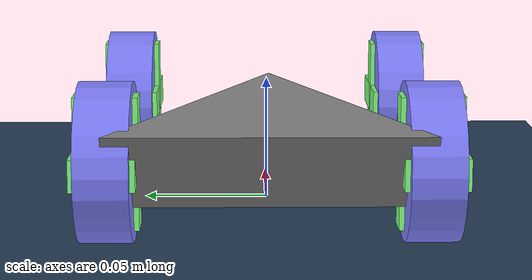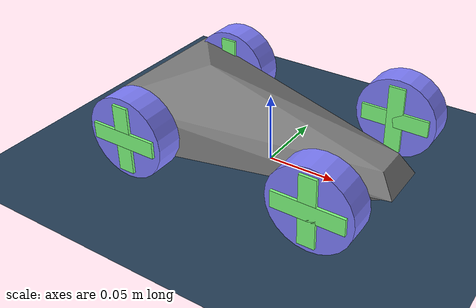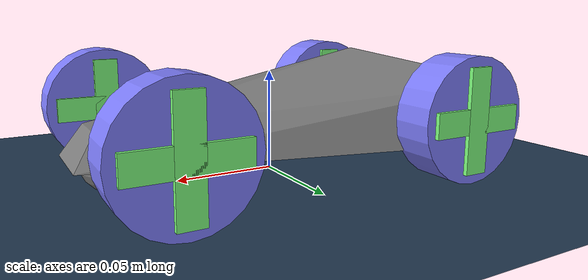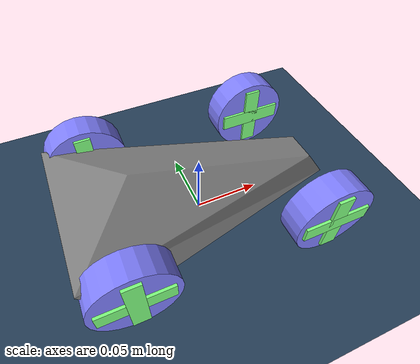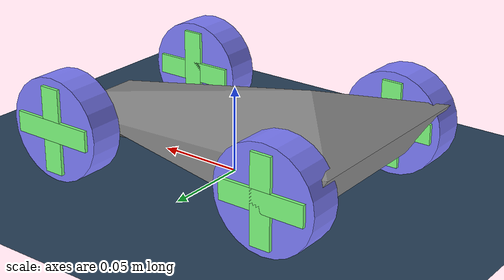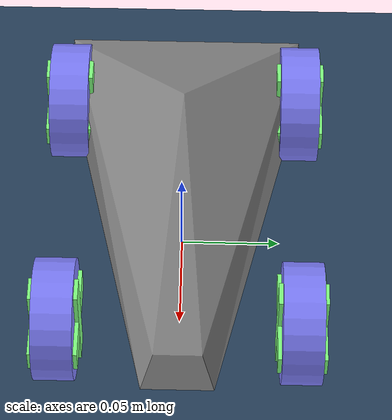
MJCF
<mujoco>
  <compiler autolimits="true"/>
  <option timestep="0.010" iterations="25" integrator="RK4" solver="Newton" tolerance="1e-10"/>

  <asset>
    <texture name="grid" type="2d" builtin="checker" width="512" height="512" rgb1=".1 .2 .3" rgb2=".2 .3 .4"/>
    <material name="grid" texture="grid" texrepeat="1 1" texuniform="true" reflectance=".2"/>
    <mesh name="chasis" scale=".01 .006 .0015"
      vertex=" 9   2   0
              -10  10  10
               9  -2   0
               10  3  -10
               10 -3  -10
              -8   10 -10
              -10 -10  10
              -8  -10 -10
              -5   0   20"/>
  </asset>

  <default>
    <joint damping=".03" actuatorforcerange="-0.5 5"/>
    <default class="wheel">
      <geom type="cylinder" size=".03 .01" rgba=".5 .5 1 1"  mass="3" condim="6" friction=".8" solimp=".7 .0 .003" solref=".015 1" />
    </default>
    <default class="wheel_link">
      <geom type="cylinder" size=".001 .001" rgba=".5 .5 1 1"  mass="0.1" condim="6" friction=".8" solimp=".7 .0 .003" solref=".015 1" />
    </default>
    <default class="wheel_link_joint">
      <joint type="hinge" range="-30 30"/>
    </default>
    <default class="decor">
      <site type="box" rgba=".5 1 .5 1"/>
    </default>
  </default>

  <worldbody>
    <geom type="plane" size="3 3 .01" material="grid"/>
    <body name="car" pos="0 0 .03">
      <freejoint name="base"/>
      <camera name="car camera" pos="-0.6 0 0.4" euler="0 -70 -90"/>
      <light name="top light" pos="0 0 2" mode="trackcom" diffuse=".4 .4 .4"/>
      <geom name="chasis" type="mesh" mesh="chasis" mass="30"/>
      <geom name="front wheel" pos=".08 0 -.015" type="sphere" size=".015" condim="1" priority="1"/>
      <light name="front light" pos=".1 0 .02" dir="2 0 -1" diffuse="1 1 1"/>
      <body name="left wheel" pos="-.07 .06 0" zaxis="0 1 0">
        <joint name="left"/>
        <geom class="wheel"/>
        <site class="decor" size=".006 .025 .012"/>
        <site class="decor" size=".025 .006 .012"/>
      </body>
      <body name="left front turn" pos=".07 .06 0" zaxis="0 0 1">
        <joint name="left_front" class="wheel_link_joint"/>
        <geom class="wheel_link"/>
        <body name="left front wheel" pos="0 0 0" zaxis="0 1 0">
          <joint name="left_front_wheel"/>
          <geom class="wheel"/>
          <site class="decor" size=".006 .025 .012"/>
          <site class="decor" size=".025 .006 .012"/>
        </body>
      </body>
      <body name="right wheel" pos="-.07 -.06 0" zaxis="0 1 0">
        <joint name="right"/>
        <geom class="wheel"/>
        <site class="decor" size=".006 .025 .012"/>
        <site class="decor" size=".025 .006 .012"/>
      </body>
      <body name="right front turn" pos=".07 -.06 0" zaxis="0 0 1">
        <joint name="right_front" class="wheel_link_joint"/>
        <geom class="wheel_link"/>
        <body name="right front wheel" pos="0 0 0" zaxis="0 1 0">
          <joint name="right_front_wheel"/>
          <geom class="wheel"/>
          <site class="decor" size=".006 .025 .012"/>
          <site class="decor" size=".025 .006 .012"/>
        </body>
      </body>
    </body>
  </worldbody>

  <tendon>
    <fixed name="forward">
      <joint joint="left" coef=".5"/>
      <joint joint="right" coef=".5"/>
    </fixed>
    <fixed name="turn">
      <joint joint="left_front" coef=".5"/>
      <joint joint="right_front" coef=".5"/>
    </fixed>
  </tendon>

  <actuator>
    <motor name="forward" tendon="forward" ctrlrange="-10 10"/>
    <position name="turnp" tendon="turn" ctrlrange="-30 30" kp="120"/>
    <velocity name="turnv" tendon="turn" ctrlrange="-1 1" kv="0.9"/>
  </actuator>

  <sensor>
    <jointactuatorfrc name="right" joint="right"/>
    <jointactuatorfrc name="left" joint="left"/>
  </sensor>
</mujoco>
